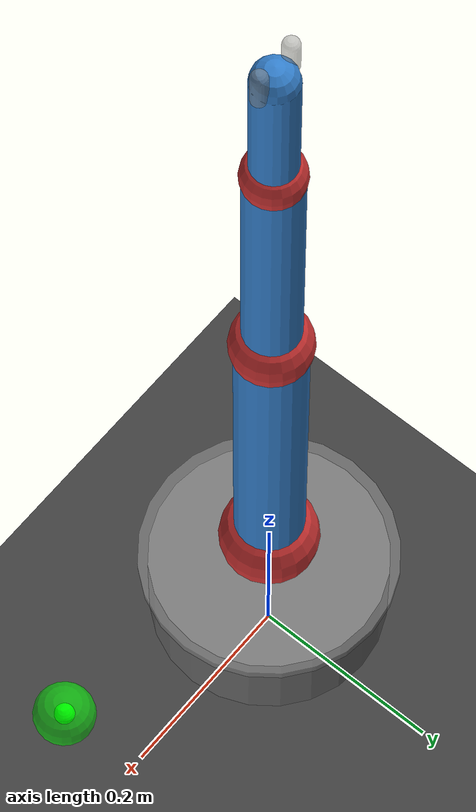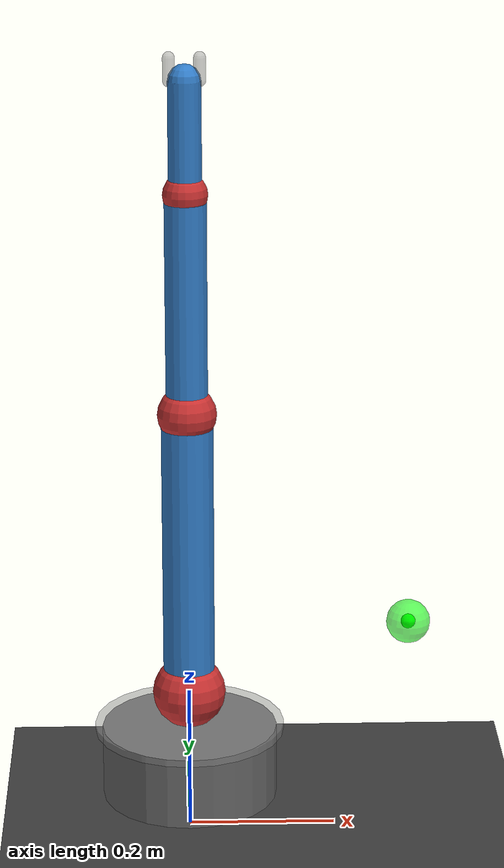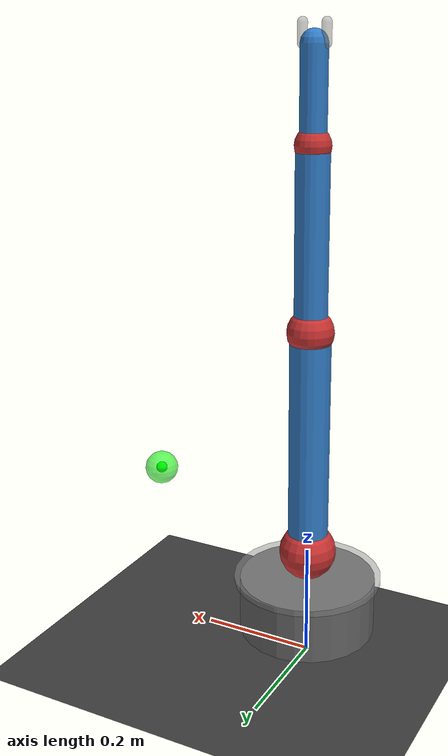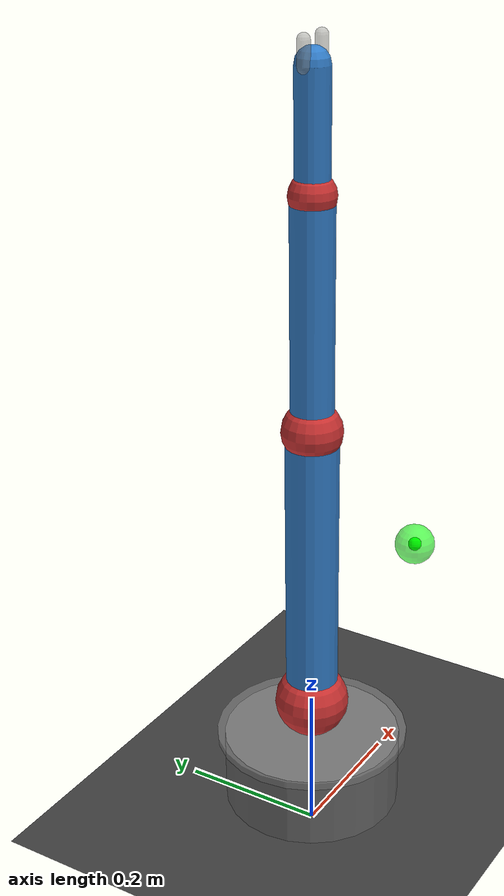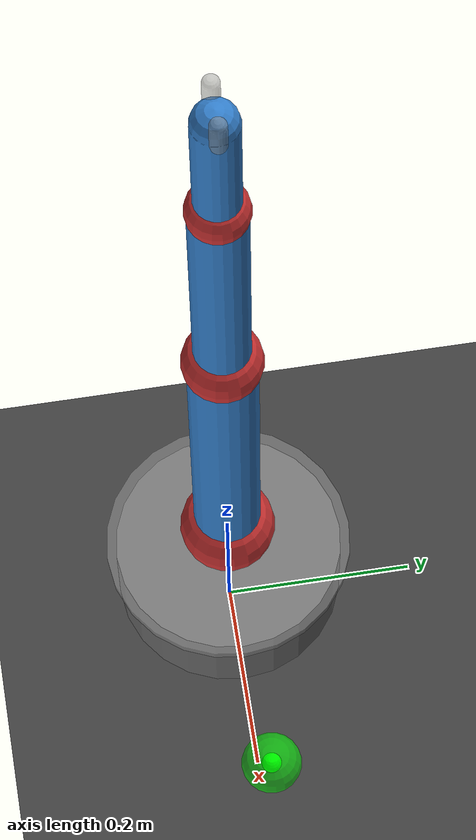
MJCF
<mujoco model="robot_arm_3dof">

  <!-- 编译器设置：角度单位为度，自动推断关节限位 -->
  <compiler angle="degree" autolimits="true"/>

  <!-- 仿真选项 -->
  <option timestep="0.002" gravity="0 0 -9.81" integrator="RK4"/>

  <!-- ============================================================
       默认参数：减少 XML 中的重复定义
       ============================================================ -->
  <default>
    <!-- 关节默认值 -->
    <joint type="hinge" damping="1.0" armature="0.05" limited="true"/>

    <!-- 几何体默认值 -->
    <geom contype="1" conaffinity="1" friction="1 0.005 0.0001"/>

    <!-- 位置执行器默认值 -->
    <position kp="50" ctrlrange="-180 180"/>

    <!-- 不同类别的默认值 -->
    <default class="link">
      <geom type="capsule" rgba="0.2 0.5 0.8 1" density="2000"/>
    </default>
    <default class="visual">
      <geom contype="0" conaffinity="0" group="1" rgba="0.6 0.6 0.6 0.5"/>
    </default>
  </default>

  <!-- 视觉资源 -->
  <asset>
    <texture type="skybox" builtin="gradient" rgb1="0.3 0.4 0.6" rgb2="0 0 0"
             width="512" height="3072"/>
    <texture type="2d" name="grid" builtin="checker"
             rgb1="0.2 0.2 0.2" rgb2="0.3 0.3 0.3"
             width="512" height="512"/>
    <material name="grid" texture="grid" texrepeat="8 8" reflectance="0.1"/>
    <material name="base_mat" rgba="0.4 0.4 0.4 1" specular="0.5"/>
    <material name="joint_mat" rgba="0.8 0.2 0.2 1" specular="0.8"/>
  </asset>

  <!-- ============================================================
       世界体：场景根节点
       ============================================================ -->
  <worldbody>
    <!-- 光源配置 -->
    <light name="spotlight" pos="0 -2 3" dir="0 1 -1" diffuse="0.8 0.8 0.8"
           specular="0.3 0.3 0.3" cutoff="30"/>
    <light name="ambient" pos="0 0 4" dir="0 0 -1" diffuse="0.4 0.4 0.4"
           directional="true"/>

    <!-- 地面 -->
    <geom name="floor" type="plane" size="5 5 0.1" material="grid"/>

    <!-- ============================================================
         固定底座：不可移动，作为机械臂的安装基础
         ============================================================ -->
    <body name="base" pos="0 0 0.1">
      <!-- 底座几何体：矮圆柱 -->
      <geom name="base_geom" type="cylinder" size="0.12 0.05"
            material="base_mat" mass="10"/>

      <!-- 底座装饰环 -->
      <geom name="base_ring" class="visual" type="cylinder"
            size="0.13 0.005" pos="0 0 0.05"/>

      <!-- ============================================================
           肩关节段：绕 Y 轴旋转（前后摆动）
           ============================================================ -->
      <body name="upper_arm" pos="0 0 0.1">
        <!-- 关节装饰球 -->
        <geom name="shoulder_ball" type="sphere" size="0.05"
              material="joint_mat" mass="0.1"/>

        <!-- 肩关节 -->
        <joint name="shoulder" axis="0 1 0" range="-90 160"/>

        <!-- 上臂连杆 -->
        <geom name="upper_arm_geom" class="link" size="0.035"
              fromto="0 0 0 0 0 0.4" mass="2"/>

        <!-- ============================================================
             肘关节段：绕 Y 轴旋转
             ============================================================ -->
        <body name="forearm" pos="0 0 0.4">
          <geom name="elbow_ball" type="sphere" size="0.04"
                material="joint_mat" mass="0.1"/>

          <!-- 肘关节 -->
          <joint name="elbow" axis="0 1 0" range="-120 120"/>

          <!-- 前臂连杆：比上臂细一些 -->
          <geom name="forearm_geom" class="link" size="0.028"
                fromto="0 0 0 0 0 0.3" mass="1"/>

          <!-- ============================================================
               腕关节段：绕 Y 轴旋转
               ============================================================ -->
          <body name="hand" pos="0 0 0.3">
            <geom name="wrist_ball" type="sphere" size="0.03"
                  material="joint_mat" mass="0.05"/>

            <!-- 腕关节 -->
            <joint name="wrist" axis="0 1 0" range="-90 90"/>

            <!-- 手掌 -->
            <geom name="hand_geom" class="link" size="0.022"
                  fromto="0 0 0 0 0 0.15" mass="0.3"/>

            <site name="end_effector" pos="0 0 0.15" size="0.015"
                  rgba="1 0.2 0.2 1"/>

            <!-- 手指装饰 -->
            <geom name="finger_left" class="visual" type="capsule"
                  size="0.008" fromto="-0.02 0 0.15 -0.02 0 0.18"/>
            <geom name="finger_right" class="visual" type="capsule"
                  size="0.008" fromto="0.02 0 0.15 0.02 0 0.18"/>
          </body>
        </body>
      </body>
    </body>

    <!-- 目标物体（供抓取测试用） -->
    <body name="target" pos="0.3 0 0.3">
      <geom name="target_geom" type="sphere" size="0.03"
            rgba="0 1 0 0.6" contype="0" conaffinity="0"/>
      <site name="target_site" size="0.01" rgba="0 1 0 1"/>
    </body>
  </worldbody>

  <!-- ============================================================
       执行器：位置伺服控制
       输入目标角度 (度)，内部 PD 控制器驱动关节
       ============================================================ -->
  <actuator>
    <position name="shoulder_act" joint="shoulder" kp="100"
              ctrlrange="-90 160"/>
    <position name="elbow_act" joint="elbow" kp="80"
              ctrlrange="-120 120"/>
    <position name="wrist_act" joint="wrist" kp="40"
              ctrlrange="-90 90"/>
  </actuator>

  <!-- ============================================================
       传感器：全面的状态反馈
       ============================================================ -->
  <sensor>
    <!-- 关节角度 (弧度) -->
    <jointpos name="shoulder_pos" joint="shoulder"/>
    <jointpos name="elbow_pos" joint="elbow"/>
    <jointpos name="wrist_pos" joint="wrist"/>

    <!-- 关节速度 (弧度/秒) -->
    <jointvel name="shoulder_vel" joint="shoulder"/>
    <jointvel name="elbow_vel" joint="elbow"/>
    <jointvel name="wrist_vel" joint="wrist"/>

    <!-- 执行器力矩 -->
    <actuatorfrc name="shoulder_torque" actuator="shoulder_act"/>
    <actuatorfrc name="elbow_torque" actuator="elbow_act"/>
    <actuatorfrc name="wrist_torque" actuator="wrist_act"/>

    <!-- 末端执行器位置 (世界坐标) -->
    <framepos name="end_effector_pos" objtype="site" objname="end_effector"/>

    <!-- 末端执行器速度 -->
    <framevelocity name="end_effector_vel" objtype="site" objname="end_effector"/>
  </sensor>

</mujoco>
